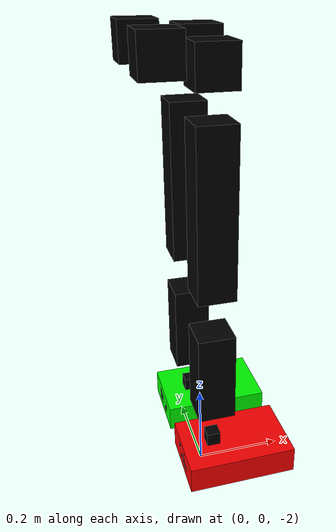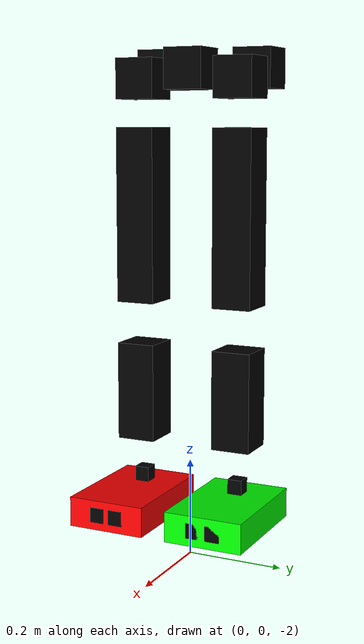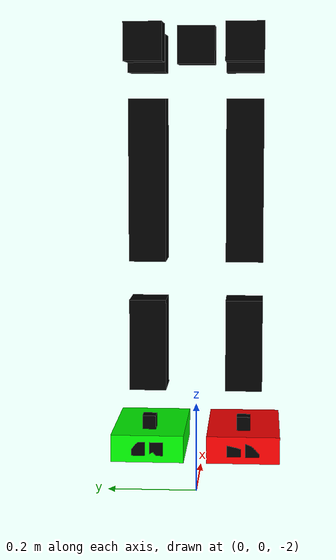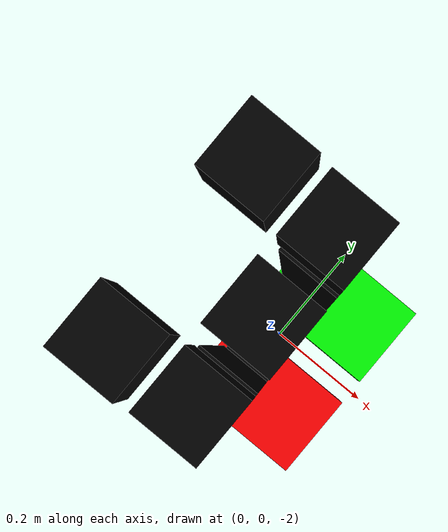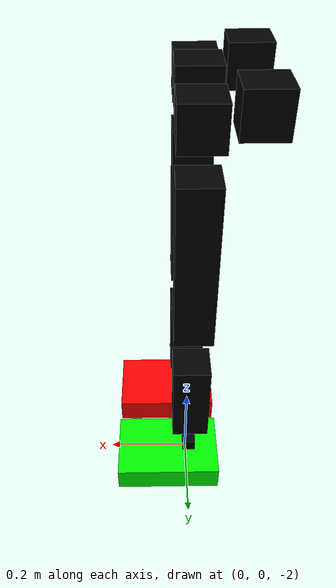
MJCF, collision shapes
<mujoco model="gr1_lowerbody_mount">
    <asset>
        <texture type="skybox" builtin="gradient" rgb1=".3 .5 .7" rgb2="0 0 0" width="32" height="512"/>
        <texture name="body" type="cube" builtin="flat" mark="cross" width="128" height="128" rgb1="0.8 0.6 0.4" rgb2="0.8 0.6 0.4" markrgb="1 1 1" random="0.01"/>
        <material name="body" texture="body" texuniform="true" rgba="0.8 0.6 .4 1"/>
        <texture name="grid" type="2d" builtin="checker" width="512" height="512" rgb1=".1 .2 .3" rgb2=".2 .3 .4"/>
        <material name="grid" texture="grid" texrepeat="1 1" texuniform="true" reflectance="0.02"/>
        <mesh name="base" file="meshes/gr1_lowerbody_mount/base.STL"/>
        <mesh name="l_thigh_roll" file="meshes/gr1_lowerbody_mount/l_thigh_roll.STL"/>
        <mesh name="l_thigh_yaw" file="meshes/gr1_lowerbody_mount/l_thigh_yaw.STL"/>
        <mesh name="l_thigh_pitch" file="meshes/gr1_lowerbody_mount/l_thigh_pitch.STL"/>
        <mesh name="l_shank_pitch" file="meshes/gr1_lowerbody_mount/l_shank_pitch.STL"/>
        <mesh name="l_foot_pitch" file="meshes/gr1_lowerbody_mount/l_foot_pitch.STL"/>
        <mesh name="l_foot_roll" file="meshes/gr1_lowerbody_mount/l_foot_roll.STL"/>
        <mesh name="r_thigh_roll" file="meshes/gr1_lowerbody_mount/r_thigh_roll.STL"/>
        <mesh name="r_thigh_yaw" file="meshes/gr1_lowerbody_mount/r_thigh_yaw.STL"/>
        <mesh name="r_thigh_pitch" file="meshes/gr1_lowerbody_mount/r_thigh_pitch.STL"/>
        <mesh name="r_shank_pitch" file="meshes/gr1_lowerbody_mount/r_shank_pitch.STL"/>
        <mesh name="r_foot_pitch" file="meshes/gr1_lowerbody_mount/r_foot_pitch.STL"/>
        <mesh name="r_foot_roll" file="meshes/gr1_lowerbody_mount/r_foot_roll.STL"/>
        <mesh name="waist_yaw" file="meshes/gr1_lowerbody_mount/waist_yaw.STL"/>
        <mesh name="waist_pitch" file="meshes/gr1_lowerbody_mount/waist_pitch.STL"/>
        <mesh name="waist_roll" file="meshes/gr1_lowerbody_mount/waist_roll.STL"/>
        <mesh name="head_yaw" file="meshes/gr1_lowerbody_mount/head_yaw.STL"/>
        <mesh name="head_roll" file="meshes/gr1_lowerbody_mount/head_roll.STL"/>
        <mesh name="head_pitch" file="meshes/gr1_lowerbody_mount/head_pitch.STL"/>
        <mesh name="l_upper_arm_pitch" file="meshes/gr1_lowerbody_mount/l_upper_arm_pitch.STL"/>
        <mesh name="l_upper_arm_roll" file="meshes/gr1_lowerbody_mount/l_upper_arm_roll.STL"/>
        <mesh name="l_upper_arm_yaw" file="meshes/gr1_lowerbody_mount/l_upper_arm_yaw.STL"/>
        <mesh name="l_lower_arm_pitch" file="meshes/gr1_lowerbody_mount/l_lower_arm_pitch.STL"/>
        <mesh name="l_hand_yaw" file="meshes/gr1_lowerbody_mount/l_hand_yaw.STL"/>
        <mesh name="l_hand_roll" file="meshes/gr1_lowerbody_mount/l_hand_roll.STL"/>
        <mesh name="l_hand_pitch" file="meshes/gr1_lowerbody_mount/l_hand_pitch.STL"/>
        <mesh name="r_upper_arm_pitch" file="meshes/gr1_lowerbody_mount/r_upper_arm_pitch.STL"/>
        <mesh name="r_upper_arm_roll" file="meshes/gr1_lowerbody_mount/r_upper_arm_roll.STL"/>
        <mesh name="r_upper_arm_yaw" file="meshes/gr1_lowerbody_mount/r_upper_arm_yaw.STL"/>
        <mesh name="r_lower_arm_pitch" file="meshes/gr1_lowerbody_mount/r_lower_arm_pitch.STL"/>
        <mesh name="r_hand_yaw" file="meshes/gr1_lowerbody_mount/r_hand_yaw.STL"/>
        <mesh name="r_hand_roll" file="meshes/gr1_lowerbody_mount/r_hand_roll.STL"/>
        <mesh name="r_hand_pitch" file="meshes/gr1_lowerbody_mount/r_hand_pitch.STL"/>
    </asset>
    <worldbody>
        <!-- Base -->
        <body name="base" pos="0 0 -0.952">
            <inertial pos="-0.0508888 0.000109183 -0.0455794" quat="0.706855 0.707166 0.0123661 -0.0109307" mass="6.45117" diaginertia="0.0149302 0.0127972 0.00640923"/>
            <!-- Base mesh -->
            <geom type="mesh" contype="0" conaffinity="0" group="1" density="0" rgba="0 0 0 1" mesh="base"/>
            <geom size="0.04 0.04 0.04" pos="0 0 -0.06" type="box" rgba="0 0 0 1"/>
            <!-- Torso center of mass -->
            <body name="torso_link">
                <body name="base_com" />
            </body>

            <!-- Left leg -->
            <!-- l thigh roll -->
            <body name="l_thigh_roll" pos="-0.047999 0.105 -0.057493">
                <inertial pos="0.04163 3.4568e-05 -0.0021382" quat="0.575529 0.581908 -0.40597 0.406619" mass="1.1437" diaginertia="0.00117548 0.00100413 0.000943892"/>
                <geom type="mesh" contype="0" conaffinity="0" group="1" density="0" rgba="0 0 0 1" mesh="l_thigh_roll"/>
                <geom size="0.04 0.04 0.04" pos="-0.046 0 0" type="box" rgba="0 0 0 1"/>

                <!-- l thigh yaw -->
                <body name="l_thigh_yaw" pos="0.048 0 -0.030499">
                    <inertial pos="0.00018348 0.046462 -0.10389" quat="0.704251 -0.0226446 -0.0453749 0.708138" mass="3.9888" diaginertia="0.0163385 0.0100158 0.00924336"/>
                    <geom type="mesh" contype="0" conaffinity="0" group="1" density="0" rgba="0 0 0 1" mesh="l_thigh_yaw"/>
                    <geom size="0.04 0.04 0.04" pos="0 0 0.01" type="box" rgba="0 0 0 1"/>

                    <!-- l thigh pitch -->
                    <body name="l_thigh_pitch" pos="0 0 -0.11">
                        <inertial pos="0.0028493 -0.021688 -0.090886" quat="0.707411 -0.0125435 -0.0111264 0.706604" mass="6.369" diaginertia="0.0532352 0.0425096 0.0134363"/>
                        <geom type="mesh" contype="0" conaffinity="0" group="1" density="0" rgba="0 0 0 1" mesh="l_thigh_pitch"/>
                        <geom size="0.04 0.04 0.175" pos="0 0 -0.15" type="box" rgba="0 0 0 1"/>

                        <!-- l shank pitch -->
                        <body name="l_shank_pitch" pos="0 2.4606e-05 -0.36">
                            <inertial pos="0.0024312 -2.9945e-05 -0.11554" quat="0.692137 0.00134576 0.00140217 0.721764" mass="2.1895" diaginertia="0.0162703 0.016117 0.00113627"/>
                            <geom type="mesh" contype="0" conaffinity="0" group="1" density="0" rgba="0 0 0 1" mesh="l_shank_pitch"/>
                            <geom size="0.04 0.04 0.1" pos="0 0 -0.15" type="box" rgba="0 0 0 1"/>

                            <!-- l foot pitch -->
                            <body name="l_foot_pitch" pos="0 2.3239e-05 -0.34">
                                <inertial pos="1.748e-11 4.3804e-11 0" quat="1 3.42295e-05 -6.07362e-06 -2.07897e-10" mass="0.080335" diaginertia="5.1022e-06 4.3976e-06 4.188e-06"/>
                                <geom type="mesh" contype="0" conaffinity="0" group="1" density="0" rgba="0 0 0 1" mesh="l_foot_pitch"/>
                                <geom size="0.015 0.015 0.015" pos="0 0 0.01" type="box" rgba="0 0 0 1"/>

                                <!-- l foot roll -->
                                <body name="l_foot_roll">
                                    <inertial pos="0.039446 0.00035757 -0.038101" quat="-0.00087198 0.709539 -0.00177594 0.704664" mass="0.584" diaginertia="0.00271032 0.0024027 0.000369145"/>
                                    <geom type="mesh" contype="0" conaffinity="0" group="1" density="0" rgba="0 0 0 1" mesh="l_foot_roll"/>
                                    <geom name="l_foot_1" size="0.015 0.015 0.12" pos="0.05 0.02 -0.035" quat="0.707105 0 0.707108 0" type="box" rgba="0 0 0 1"/>
                                    <geom name="l_foot_2" size="0.015 0.015 0.12" pos="0.05 -0.02 -0.035" quat="0.707105 0 0.707108 0" type="box" rgba="0 0 0 1"/>
                                    <geom name="geom_left_A1_col" size="0.03 .08 0.12" pos="0.05 0 -0.035" quat="0.707105 0 0.707108 0" type="box" rgba="0 1 0 1"/>

                                    <body name="left_foot" pos="0 0 -0.076" quat="1 0 0 0"/>
                                </body>
                                <!-- End of l foot roll -->
                            </body>
                            <!-- End of l foot pitch -->
                        </body>
                        <!-- End of l shank pitch -->
                    </body>
                    <!-- End of l thigh pitch -->
                </body>
                <!-- End of l thigh yaw -->
            </body>
            <!-- End of l thigh roll -->
            <!-- End of Left leg -->

            <!-- Right leg -->
            <!-- r thigh roll -->
            <body name="r_thigh_roll" pos="-0.047999 -0.105 -0.057508">
                <inertial pos="0.0416295 3.45678e-05 -0.00213824" quat="0.57555 0.581927 -0.405942 0.406589" mass="1.14367" diaginertia="0.00117548 0.00100417 0.000943891"/>
                <geom type="mesh" contype="0" conaffinity="0" group="1" density="0" rgba="0 0 0 1" mesh="r_thigh_roll"/>
                <geom size="0.04 0.04 0.04" pos="-0.046 0 0" type="box" rgba="0 0 0 1"/>

                <!-- r thigh yaw -->
                <body name="r_thigh_yaw" pos="0.048 0 -0.030499">
                    <inertial pos="-0.00159762 -0.0464482 -0.103899" quat="0.709186 -0.0420808 -0.0194028 0.703497" mass="3.98882" diaginertia="0.0163388 0.0100142 0.00924469"/>
                    <geom type="mesh" contype="0" conaffinity="0" group="1" density="0" rgba="0 0 0 1" mesh="r_thigh_yaw"/>
                    <geom size="0.04 0.04 0.04" pos="0 0 0.01" type="box" rgba="0 0 0 1"/>

                    <!-- r thigh pitch -->
                    <body name="r_thigh_pitch" pos="0 0 -0.11">
                        <inertial pos="0.002842 0.0217009 -0.0919987" quat="0.706586 -0.0113774 -0.0126258 0.707423" mass="6.36895" diaginertia="0.0532349 0.0424818 0.0134641"/>
                        <geom type="mesh" contype="0" conaffinity="0" group="1" density="0" rgba="0 0 0 1" mesh="r_thigh_pitch"/>
                        <geom size="0.04 0.04 0.175" pos="0 0 -0.15" type="box" rgba="0 0 0 1"/>

                        <!-- r shank pitch -->
                        <body name="r_shank_pitch" pos="0 2.4606e-05 -0.36">
                            <inertial pos="0.00236658 4.56188e-05 -0.115532" quat="0.71872 0.00154106 0.00120241 0.695296" mass="2.18947" diaginertia="0.0162708 0.0161183 0.00113536"/>
                            <geom type="mesh" contype="0" conaffinity="0" group="1" density="0" rgba="0 0 0 1" mesh="r_shank_pitch"/>
                            <geom size="0.04 0.04 0.1" pos="0 0 -0.15" type="box" rgba="0 0 0 1"/>

                            <!-- r foot pitch -->
                            <body name="r_foot_pitch" pos="0 2.3239e-05 -0.34">
                                <inertial pos="1.75705e-11 4.40342e-11 0" quat="1 3.42336e-05 -6.07409e-06 -2.07938e-10" mass="0.0799219" diaginertia="5.11122e-06 4.40004e-06 4.17954e-06"/>
                                <geom type="mesh" contype="0" conaffinity="0" group="1" density="0" rgba="0 0 0 1" mesh="r_foot_pitch"/>
                                <geom size="0.015 0.015 0.015" pos="0 0 0.01" type="box" rgba="0 0 0 1"/>

                                <!-- r foot roll -->
                                <body name="r_foot_roll">
                                    <inertial pos="0.043909 -0.00032475 -0.039419" quat="0.000727105 0.710094 0.00155959 0.704104" mass="0.58089" diaginertia="0.00280098 0.0024886 0.000368482"/>
                                    <geom type="mesh" contype="0" conaffinity="0" group="1" density="0" rgba="0 0 0 1" mesh="r_foot_roll"/>
                                    <geom name="r_foot_1" size="0.015 0.015 0.12" pos="0.05 0.02 -0.035" quat="0.707105 0 0.707108 0" type="box" rgba="0 0 0 1"/>
                                    <geom name="r_foot_2" size="0.015 0.015 0.12" pos="0.05 -0.02 -0.035" quat="0.707105 0 0.707108 0" type="box" rgba="0 0 0 1"/>
                                    <geom name="geom_right_A1_col" size="0.03 .08 0.12" pos="0.05 0 -0.035" quat="0.707105 0 0.707108 0" type="box" rgba="1 0 0 1"/>

                                    <body name="right_foot" pos="0 0 -0.076" quat="1 0 0 0"/>
                                </body>
                                <!-- End of r foot roll -->
                            </body>
                            <!-- End of r foot pitch -->
                        </body>
                        <!-- End of r shank pitch -->
                    </body>
                    <!-- End of r thigh pitch -->
                </body>
                <!-- End of r thigh yaw -->
            </body>
            <!-- End of r thigh roll -->

            <!-- End of Right leg -->
        </body>
        <!-- End of Base -->
    </worldbody>
</mujoco>
